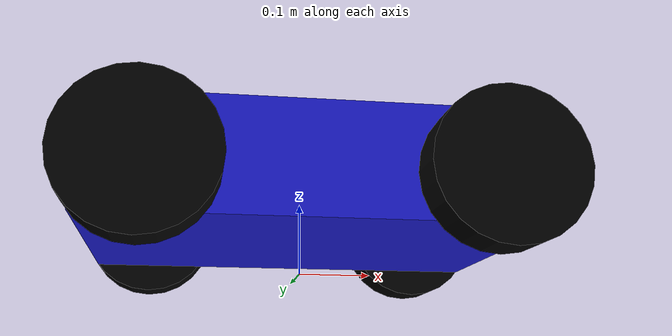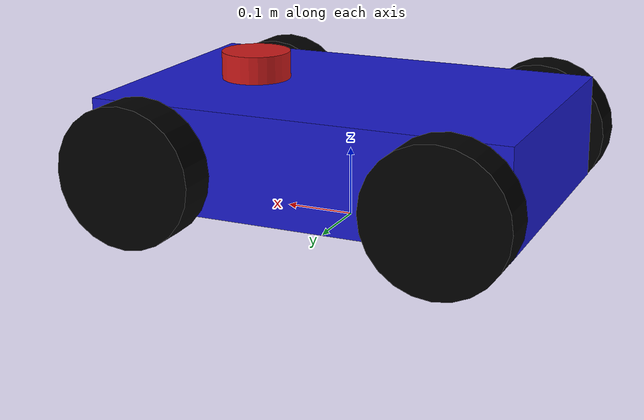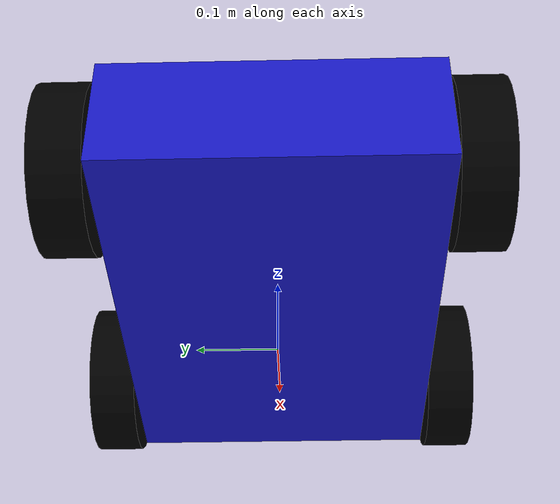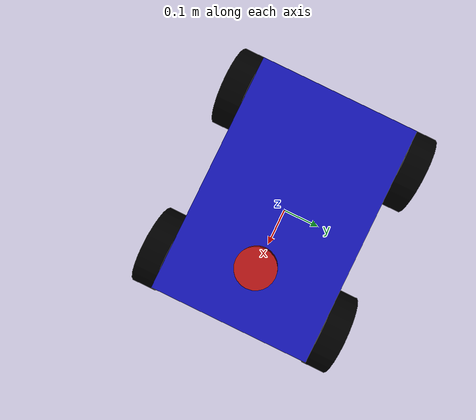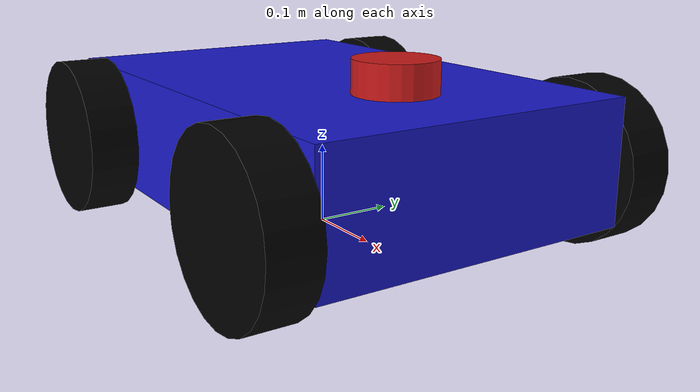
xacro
<?xml version="1.0"?>
<robot xmlns:xacro="http://www.ros.org/wiki/xacro" name="mecanum_robot">

    <!-- chassis properties -->
    <xacro:property name="chassis_length" value="0.60"/>
    <xacro:property name="chassis_width"  value="0.40"/>
    <xacro:property name="chassis_height" value="0.15"/>
    <xacro:property name="chassis_mass"   value="15.0"/>
    <xacro:property name="wheel_radius"   value="0.10"/>
    <xacro:property name="wheel_thickness" value="0.06"/>
    <xacro:property name="wheel_mass"     value="1.5"/>
    <xacro:property name="ground_clearance" value="0.04"/>

    <xacro:property name="wheel_inset_x" value="0.08"/>
    <xacro:property name="wheel_inset_y" value="0.03"/>

    <xacro:property name="lidar_radius" value="0.05"/>
    <xacro:property name="lidar_height" value="0.04"/>
    <xacro:property name="lidar_mass"   value="0.2"/>

    <xacro:property name="wheel_pos_x" value="${(chassis_length / 2.0) - wheel_inset_x}"/>
    <xacro:property name="wheel_pos_y" value="${(chassis_width / 2.0) + wheel_inset_y}"/>
    <xacro:property name="chassis_pos_z" value="${ground_clearance + (chassis_height / 2.0)}"/>
    <xacro:property name="wheel_pos_z"   value="${wheel_radius}"/>

    <xacro:property name="lidar_update_rate"   value="10"/>
    <xacro:property name="lidar_samples"       value="360"/>
    <xacro:property name="lidar_min_angle"     value="-3.14159"/>
    <xacro:property name="lidar_max_angle"     value="3.14159"/>
    <xacro:property name="lidar_min_range"     value="0.15"/>
    <xacro:property name="lidar_max_range"     value="12.0"/>
    <xacro:property name="lidar_noise_stddev"  value="0.01"/>

    <xacro:property name="wheelbase"        value="${wheel_pos_x * 2.0}"/>
    <xacro:property name="wheel_separation" value="${wheel_pos_y * 2.0}"/>

    <!-- Sim Toggle -->
    <xacro:arg name="use_sim" default="false" />

    <xacro:macro name="inertial_box" params="mass x y z">
        <inertial>
            <origin xyz="0 0 0" rpy="0 0 0"/>
            <mass value="${mass}"/>
            <inertia ixx="${(mass/12.0) * (y*y + z*z)}" ixy="0.0" ixz="0.0"
                     iyy="${(mass/12.0) * (x*x + z*z)}" iyz="0.0"
                     izz="${(mass/12.0) * (x*x + y*y)}"/>
        </inertial>
    </xacro:macro>

    <xacro:macro name="inertial_cylinder" params="mass radius length">
        <inertial>
            <origin xyz="0 0 0" rpy="0 0 0"/>
            <mass value="${mass}"/>
            <inertia ixx="${(mass/12.0) * (3*radius*radius + length*length)}" ixy="0.0" ixz="0.0"
                     iyy="${(mass/12.0) * (3*radius*radius + length*length)}" iyz="0.0"
                     izz="${(0.5) * mass * (radius*radius)}"/>
        </inertial>
    </xacro:macro>

    <link name="base_link"/>

    <link name="chassis">
        <visual>
            <geometry>
                <box size="${chassis_length} ${chassis_width} ${chassis_height}"/>
            </geometry>
            <material name="blue"><color rgba="0.1 0.1 0.8 1.0"/></material>
        </visual>
        <collision>
            <geometry>
                <box size="${chassis_length} ${chassis_width} ${chassis_height}"/>
            </geometry>
        </collision>
        <xacro:inertial_box mass="${chassis_mass}" x="${chassis_length}" y="${chassis_width}" z="${chassis_height}"/>
    </link>

    <joint name="chassis_joint" type="fixed">
        <parent link="base_link"/>
        <child link="chassis"/>
        <origin xyz="0 0 ${chassis_pos_z}" rpy="0 0 0"/>
    </joint>

    <!-- Added z_axis_reflect parameter -->
    <xacro:macro name="mecanum_wheel" params="prefix x_reflect y_reflect z_axis_reflect">
        <link name="${prefix}_wheel">
            <visual>
                <origin xyz="0 0 0" rpy="${pi/2} 0 0"/>
                <geometry>
                    <cylinder radius="${wheel_radius}" length="${wheel_thickness}"/>
                </geometry>
                <material name="black"><color rgba="0.0 0.0 0.0 1.0"/></material>
            </visual>
            <collision>
                <origin xyz="0 0 0" rpy="0 0 0"/>
                <geometry>
                    <sphere radius="${wheel_radius}"/>
                </geometry>
            </collision>
            <xacro:inertial_cylinder mass="${wheel_mass}" radius="${wheel_radius}" length="${wheel_thickness}"/>
        </link>

        <joint name="${prefix}_wheel_joint" type="continuous">
            <parent link="base_link"/>
            <child link="${prefix}_wheel"/>
            <origin xyz="${x_reflect * wheel_pos_x} ${y_reflect * wheel_pos_y} ${wheel_pos_z}" rpy="0 0 0"/>
            <!-- Flipped dynamically based on which side the wheel is on -->
            <axis xyz="0 ${z_axis_reflect} 0"/>
        </joint>

        <gazebo reference="${prefix}_wheel">
            <surface>
                <friction>
                    <ode>
                        <mu>0.0</mu>   <mu2>0.0</mu2>
                    </ode>
                </friction>
            </surface>
        </gazebo>
    </xacro:macro>

    <!-- Left wheels rotate normally along +Y axis -->
    <xacro:mecanum_wheel prefix="front_left"  x_reflect="1"  y_reflect="1"  z_axis_reflect="1" />
    <xacro:mecanum_wheel prefix="rear_left"   x_reflect="-1" y_reflect="1"  z_axis_reflect="1" />
    <!-- Right wheels rotate inverted along -Y axis (180 degree flip) -->
    <xacro:mecanum_wheel prefix="front_right" x_reflect="1"  y_reflect="-1" z_axis_reflect="-1" />
    <xacro:mecanum_wheel prefix="rear_right"  x_reflect="-1" y_reflect="-1" z_axis_reflect="-1" />

    <!-- LIDAR -->
    <link name="laser_frame">
        <visual>
            <geometry>
                <cylinder radius="${lidar_radius}" length="${lidar_height}"/>
            </geometry>
            <material name="red"><color rgba="0.8 0.1 0.1 1.0"/></material>
        </visual>
        <collision>
            <geometry>
                <cylinder radius="${lidar_radius}" length="${lidar_height}"/>
            </geometry>
        </collision>
        <xacro:inertial_cylinder mass="${lidar_mass}" radius="${lidar_radius}" length="${lidar_height}"/>
    </link>

    <joint name="laser_joint" type="fixed">
        <parent link="chassis"/>
        <child link="laser_frame"/>
        <origin xyz="${chassis_length/4.0} 0 ${(chassis_height/2.0) + (lidar_height/2.0)}" rpy="0 0 0"/>
    </joint>

    <!-- SENSOR LINKS FOR ROS2_CONTROL -->
    <link name="imu_sensor_1"/>
    <joint name="imu_1_joint" type="fixed">
        <parent link="chassis"/>
        <child link="imu_sensor_1"/>
        <origin xyz="0 0 0" rpy="0 0 0"/>
    </joint>

    <link name="imu_sensor_2"/>
    <joint name="imu_2_joint" type="fixed">
        <parent link="chassis"/>
        <child link="imu_sensor_2"/>
        <origin xyz="0 0 0" rpy="0 0 0"/>
    </joint>

    <link name="ir_sensor_1"/>
    <joint name="ir_1_joint" type="fixed">
        <parent link="chassis"/>
        <child link="ir_sensor_1"/>
        <origin xyz="0.2 0.1 0" rpy="0 0 0"/>
    </joint>

    <link name="ir_sensor_2"/>
    <joint name="ir_2_joint" type="fixed">
        <parent link="chassis"/>
        <child link="ir_sensor_2"/>
        <origin xyz="0.2 -0.1 0" rpy="0 0 0"/>
    </joint>

    <link name="ir_sensor_3"/>
    <joint name="ir_3_joint" type="fixed">
        <parent link="chassis"/>
        <child link="ir_sensor_3"/>
        <origin xyz="-0.2 0.1 0" rpy="0 0 0"/>
    </joint>

    <link name="ir_sensor_4"/>
    <joint name="ir_4_joint" type="fixed">
        <parent link="chassis"/>
        <child link="ir_sensor_4"/>
        <origin xyz="-0.2 -0.1 0" rpy="0 0 0"/>
    </joint>

    <!-- SERVO 1 (Front) -->
    <link name="servo_1_link"/>
    <joint name="servo_1_joint" type="continuous">
        <parent link="chassis"/>
        <child link="servo_1_link"/>
        <origin xyz="0.2 0.0 0.1" rpy="0 0 0"/>
        <axis xyz="0 0 1"/>
    </joint>

    <!-- SERVO 2 (Rear) -->
    <link name="servo_2_link"/>
    <joint name="servo_2_joint" type="continuous">
        <parent link="chassis"/>
        <child link="servo_2_link"/>
        <origin xyz="-0.2 0.0 0.1" rpy="0 0 0"/>
        <axis xyz="0 0 1"/>
    </joint>

    <!-- REAL HARDWARE (Arduino ros2_control: LEFT/RIGHT) -->
    <xacro:unless value="$(arg use_sim)">
        <!-- LEFT ARDUINO -->
        <ros2_control name="ArduinoLeft" type="system">
            <hardware>
                <plugin>arduino_hardware_interface/ArduinoHardwareInterface</plugin>
                <param name="serial_port">/dev/ttyUSB0</param>
                <param name="baudrate">115200</param>
            </hardware>

            <joint name="front_left_wheel_joint">
                <command_interface name="velocity"/>
                <state_interface name="position"/>
                <state_interface name="velocity"/>
                <!-- Change to -1 if this wheel spins the wrong way -->
                <param name="direction_multiplier">1</param>
            </joint>
            <joint name="rear_left_wheel_joint">
                <command_interface name="velocity"/>
                <state_interface name="position"/>
                <state_interface name="velocity"/>
                <!-- Change to -1 if this wheel spins the wrong way -->
                <param name="direction_multiplier">1</param>
            </joint>

            <joint name="servo_1_joint">
                <command_interface name="position"/>
                <state_interface name="position"/>
            </joint>

            <sensor name="imu_sensor_1">
                <state_interface name="orientation.x"/>
                <state_interface name="orientation.y"/>
                <state_interface name="orientation.z"/>
                <state_interface name="orientation.w"/>
                <state_interface name="angular_velocity.x"/>
                <state_interface name="angular_velocity.y"/>
                <state_interface name="angular_velocity.z"/>
                <state_interface name="linear_acceleration.x"/>
                <state_interface name="linear_acceleration.y"/>
                <state_interface name="linear_acceleration.z"/>
            </sensor>
            <sensor name="ir_sensor_1">
                <state_interface name="range"/>
            </sensor>
            <sensor name="ir_sensor_2">
                <state_interface name="range"/>
            </sensor>
        </ros2_control>

        <!-- RIGHT ARDUINO -->
        <ros2_control name="ArduinoRight" type="system">
            <hardware>
                <plugin>arduino_hardware_interface/ArduinoHardwareInterface</plugin>
                <param name="serial_port">/dev/ttyAMA2</param>
                <param name="baudrate">115200</param>
            </hardware>

            <joint name="front_right_wheel_joint">
                <command_interface name="velocity"/>
                <state_interface name="position"/>
                <state_interface name="velocity"/>
                <!-- Change to -1 if this wheel spins the wrong way -->
                <param name="direction_multiplier">-1</param>
            </joint>
            <joint name="rear_right_wheel_joint">
                <command_interface name="velocity"/>
                <state_interface name="position"/>
                <state_interface name="velocity"/>
                <!-- Change to -1 if this wheel spins the wrong way -->
                <param name="direction_multiplier">-1</param>
            </joint>

            <joint name="servo_2_joint">
                <command_interface name="position"/>
                <state_interface name="position"/>
            </joint>

            <sensor name="imu_sensor_2">
                <state_interface name="orientation.x"/>
                <state_interface name="orientation.y"/>
                <state_interface name="orientation.z"/>
                <state_interface name="orientation.w"/>
                <state_interface name="angular_velocity.x"/>
                <state_interface name="angular_velocity.y"/>
                <state_interface name="angular_velocity.z"/>
                <state_interface name="linear_acceleration.x"/>
                <state_interface name="linear_acceleration.y"/>
                <state_interface name="linear_acceleration.z"/>
            </sensor>
            <sensor name="ir_sensor_3">
                <state_interface name="range"/>
            </sensor>
            <sensor name="ir_sensor_4">
                <state_interface name="range"/>
            </sensor>
        </ros2_control>
    </xacro:unless>

    <!-- SIMULATION (Gazebo Plugins)                    -->
    <xacro:if value="$(arg use_sim)">
        <gazebo>
            <plugin filename="gz-sim-mecanum-drive-system" name="gz::sim::systems::MecanumDrive">
                <front_left_joint>front_left_wheel_joint</front_left_joint>
                <front_right_joint>front_right_wheel_joint</front_right_joint>
                <back_left_joint>rear_left_wheel_joint</back_left_joint>
                <back_right_joint>rear_right_wheel_joint</back_right_joint>
                <wheelbase>${wheelbase}</wheelbase>
                <wheel_separation>${wheel_separation}</wheel_separation>
                <wheel_radius>${wheel_radius}</wheel_radius>
                <odom_publish_frequency>50</odom_publish_frequency>
                <topic>/cmd_vel</topic>
                <odom_topic>/odom</odom_topic>
                <tf_topic>/tf</tf_topic>
                <frame_id>odom</frame_id>
                <child_frame_id>base_link</child_frame_id>
            </plugin>
            <plugin filename="gz-sim-velocity-control-system" name="gz::sim::systems::VelocityControl">
                <topic>/cmd_vel</topic>
            </plugin>
            <plugin filename="gz-sim-joint-state-publisher-system" name="gz::sim::systems::JointStatePublisher">
                <topic>/joint_states</topic>
                <joint>front_left_wheel_joint</joint>
                <joint>front_right_wheel_joint</joint>
                <joint>rear_left_wheel_joint</joint>
                <joint>rear_right_wheel_joint</joint>
            </plugin>
        </gazebo>

        <gazebo reference="laser_frame">
            <sensor name="gpu_lidar" type="gpu_lidar">
                <pose>0 0 0 0 0 0</pose>
                <always_on>true</always_on>
                <update_rate>${lidar_update_rate}</update_rate>
                <visualize>true</visualize>
                <topic>/scan</topic>
                <gz_frame_id>laser_frame</gz_frame_id>
                <lidar>
                    <scan>
                        <horizontal>
                            <samples>${lidar_samples}</samples>
                            <resolution>1</resolution>
                            <min_angle>${lidar_min_angle}</min_angle>
                            <max_angle>${lidar_max_angle}</max_angle>
                        </horizontal>
                    </scan>
                    <range>
                        <min>${lidar_min_range}</min>
                        <max>${lidar_max_range}</max>
                        <resolution>0.01</resolution>
                    </range>
                    <noise>
                        <type>gaussian</type>
                        <mean>0.0</mean>
                        <stddev>${lidar_noise_stddev}</stddev>
                    </noise>
                </lidar>
            </sensor>
        </gazebo>
    </xacro:if>

</robot>
